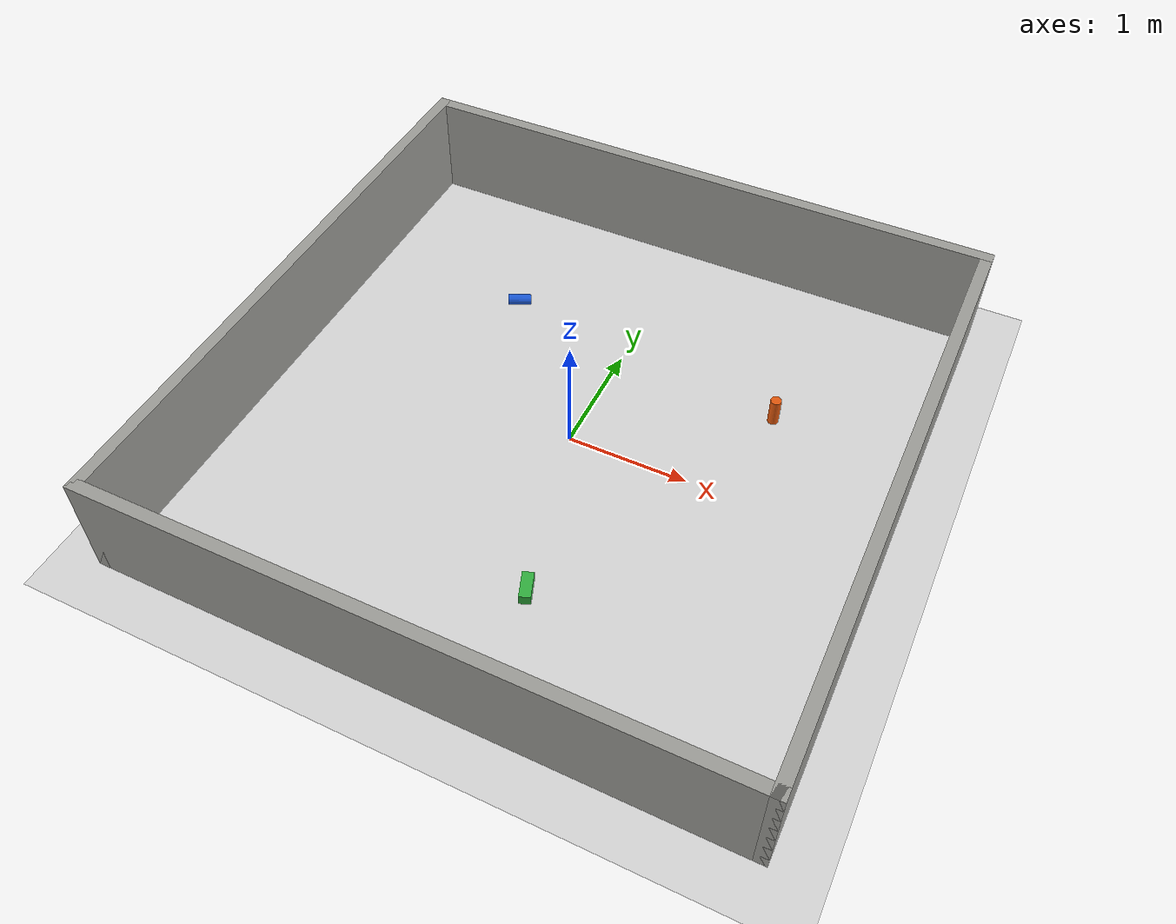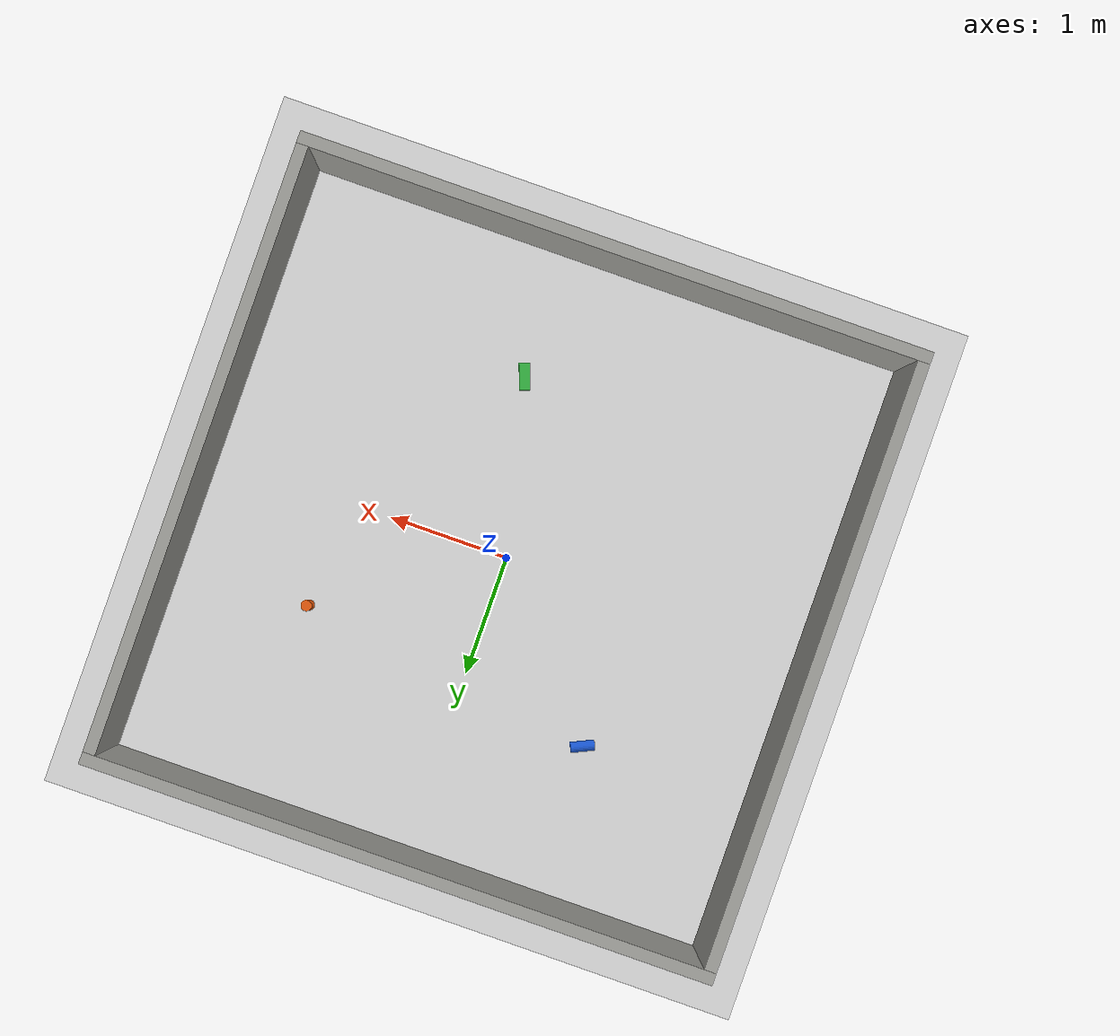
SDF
<?xml version="1.0"?>
<sdf version="1.9">
  <world name="navigate">

    <physics name="step" type="ignored">
      <max_step_size>0.001</max_step_size>
      <real_time_factor>1.0</real_time_factor>
    </physics>
    <plugin filename="gz-sim-physics-system" name="gz::sim::systems::Physics"/>
    <plugin filename="gz-sim-user-commands-system" name="gz::sim::systems::UserCommands"/>
    <plugin filename="gz-sim-scene-broadcaster-system" name="gz::sim::systems::SceneBroadcaster"/>
    <plugin filename="gz-sim-imu-system"
            name="gz::sim::systems::Imu"/>
    <plugin filename="gz-sim-forcetorque-system"
            name="gz::sim::systems::ForceTorque"/>
    <plugin filename="gz-sim-contact-system"
            name="gz::sim::systems::Contact"/>
    <plugin filename="gz-sim-sensors-system" name="gz::sim::systems::Sensors">
      <render_engine>ogre2</render_engine>
    </plugin>

    <light type="directional" name="sun">
      <cast_shadows>true</cast_shadows>
      <pose>0 0 10 0 0 0</pose>
      <diffuse>0.9 0.9 0.9 1</diffuse>
      <specular>0.2 0.2 0.2 1</specular>
      <direction>-0.4 0.2 -0.9</direction>
    </light>

    <model name="ground_plane">
      <static>true</static>
      <link name="link">
        <collision name="col">
          <geometry><plane><normal>0 0 1</normal><size>12 12</size></plane></geometry>
          <surface><friction><ode><mu>1.0</mu><mu2>1.0</mu2></ode></friction></surface>
        </collision>
        <visual name="vis">
          <geometry><plane><normal>0 0 1</normal><size>12 12</size></plane></geometry>
          <material><ambient>0.85 0.85 0.85 1</ambient><diffuse>0.85 0.85 0.85 1</diffuse></material>
        </visual>
      </link>
    </model>

    <model name="room">
      <static>true</static>
      <link name="link">
        <collision name="wall_n"><pose>0 2.55 0.45 0 0 0</pose>
          <geometry><box><size>5.2 0.10 0.90</size></box></geometry></collision>
        <visual name="wall_n_v"><pose>0 2.55 0.45 0 0 0</pose>
          <geometry><box><size>5.2 0.10 0.90</size></box></geometry>
          <material><ambient>0.62 0.62 0.60 1</ambient><diffuse>0.62 0.62 0.60 1</diffuse></material></visual>
        <collision name="wall_s"><pose>0 -2.55 0.45 0 0 0</pose>
          <geometry><box><size>5.2 0.10 0.90</size></box></geometry></collision>
        <visual name="wall_s_v"><pose>0 -2.55 0.45 0 0 0</pose>
          <geometry><box><size>5.2 0.10 0.90</size></box></geometry>
          <material><ambient>0.62 0.62 0.60 1</ambient><diffuse>0.62 0.62 0.60 1</diffuse></material></visual>
        <collision name="wall_e"><pose>2.55 0 0.45 0 0 0</pose>
          <geometry><box><size>0.10 5.2 0.90</size></box></geometry></collision>
        <visual name="wall_e_v"><pose>2.55 0 0.45 0 0 0</pose>
          <geometry><box><size>0.10 5.2 0.90</size></box></geometry>
          <material><ambient>0.62 0.62 0.60 1</ambient><diffuse>0.62 0.62 0.60 1</diffuse></material></visual>
        <collision name="wall_w"><pose>-2.55 0 0.45 0 0 0</pose>
          <geometry><box><size>0.10 5.2 0.90</size></box></geometry></collision>
        <visual name="wall_w_v"><pose>-2.55 0 0.45 0 0 0</pose>
          <geometry><box><size>0.10 5.2 0.90</size></box></geometry>
          <material><ambient>0.62 0.62 0.60 1</ambient><diffuse>0.62 0.62 0.60 1</diffuse></material></visual>
      </link>
    </model>

    <include>
      <uri>model://bottle</uri>
      <name>bottle</name>
      <pose>1.400 0.900 0.120 0 0 0</pose>
    </include>
    <include>
      <uri>model://can</uri>
      <name>can</name>
      <pose>-1.100 1.250 0.045 1.5708 0 2.0071</pose>
    </include>
    <include>
      <uri>model://box</uri>
      <name>box</name>
      <pose>0.350 -1.450 0.045 1.5708 0 3.4907</pose>
    </include>

  </world>
</sdf>

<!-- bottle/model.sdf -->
<sdf version="1.9">
  <model name="bottle">
    <link name="link">
      <inertial><mass>0.45</mass>
        <inertia><ixx>2.387812e-03</ixx><iyy>2.387812e-03</iyy><izz>4.556250e-04</izz>
          <ixy>0</ixy><ixz>0</ixz><iyz>0</iyz></inertia>
      </inertial>
      <collision name="col">
        <geometry><cylinder><radius>0.045</radius><length>0.24</length></cylinder></geometry>
        <surface>
          <friction><ode><mu>1.5</mu><mu2>1.5</mu2></ode></friction>
          <contact><ode><soft_cfm>0.001</soft_cfm><soft_erp>0.2</soft_erp>
            <kp>1e6</kp><kd>100</kd></ode></contact>
        </surface>
      </collision>
      <visual name="vis">
        <geometry><cylinder><radius>0.045</radius><length>0.24</length></cylinder></geometry>
        <material><ambient>0.90 0.35 0.05 1</ambient><diffuse>0.90 0.35 0.05 1</diffuse>
          <specular>0.3 0.3 0.3 1</specular></material>
      </visual>
    </link>
    <plugin filename="gz-sim-pose-publisher-system"
            name="gz::sim::systems::PosePublisher">
      <publish_link_pose>false</publish_link_pose>
      <publish_visual_pose>false</publish_visual_pose>
      <publish_collision_pose>false</publish_collision_pose>
      <publish_sensor_pose>false</publish_sensor_pose>
      <publish_nested_model_pose>false</publish_nested_model_pose>
      <publish_model_pose>true</publish_model_pose>
      <use_pose_vector_msg>false</use_pose_vector_msg>
      <!-- MUST stay false: "publish only on change" is the same trap as
           dynamic_pose/info, where a resting object never appears. -->
      <static_publisher>false</static_publisher>
      <update_frequency>20</update_frequency>
    </plugin>
  </model>
</sdf>

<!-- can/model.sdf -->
<sdf version="1.9">
  <model name="can">
    <link name="link">
      <velocity_decay>
      <linear>0.0</linear>
      <angular>2.0</angular>
      </velocity_decay>
      <inertial><mass>0.35</mass>
        <inertia><ixx>1.343854e-03</ixx><iyy>1.343854e-03</iyy><izz>3.543750e-04</izz>
          <ixy>0</ixy><ixz>0</ixz><iyz>0</iyz></inertia>
      </inertial>
      <collision name="col">
        <geometry><cylinder><radius>0.045</radius><length>0.2</length></cylinder></geometry>
        <surface>
          <friction><ode><mu>1.5</mu><mu2>1.5</mu2></ode></friction>
          <contact><ode><soft_cfm>0.001</soft_cfm><soft_erp>0.2</soft_erp>
            <kp>1e6</kp><kd>100</kd></ode></contact>
        </surface>
      </collision>
      <visual name="vis">
        <geometry><cylinder><radius>0.045</radius><length>0.2</length></cylinder></geometry>
        <material><ambient>0.10 0.35 0.85 1</ambient><diffuse>0.10 0.35 0.85 1</diffuse>
          <specular>0.3 0.3 0.3 1</specular></material>
      </visual>
    </link>
    <plugin filename="gz-sim-pose-publisher-system"
            name="gz::sim::systems::PosePublisher">
      <publish_link_pose>false</publish_link_pose>
      <publish_visual_pose>false</publish_visual_pose>
      <publish_collision_pose>false</publish_collision_pose>
      <publish_sensor_pose>false</publish_sensor_pose>
      <publish_nested_model_pose>false</publish_nested_model_pose>
      <!-- the model pose, in the world frame - exactly what verification needs -->
      <publish_model_pose>true</publish_model_pose>
      <!-- one plain Pose, not a Pose_V, so the bridge conversion is the simplest one -->
      <use_pose_vector_msg>false</use_pose_vector_msg>
      <static_publisher>false</static_publisher>
      <update_frequency>20</update_frequency>
    </plugin>
  </model>
</sdf>

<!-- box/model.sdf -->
<sdf version="1.9">
  <model name="box">
    <link name="link">
      <inertial><mass>0.5</mass>
        <inertia><ixx>2.354167e-03</ixx><iyy>2.354167e-03</iyy><izz>6.750000e-04</izz>
          <ixy>0</ixy><ixz>0</ixz><iyz>0</iyz></inertia>
      </inertial>
      <collision name="col">
        <geometry><box><size>0.09 0.09 0.22</size></box></geometry>
        <surface>
          <friction><ode><mu>1.5</mu><mu2>1.5</mu2></ode></friction>
          <contact><ode><soft_cfm>0.001</soft_cfm><soft_erp>0.2</soft_erp>
            <kp>1e6</kp><kd>100</kd></ode></contact>
        </surface>
      </collision>
      <visual name="vis">
        <geometry><box><size>0.09 0.09 0.22</size></box></geometry>
        <material><ambient>0.20 0.70 0.25 1</ambient><diffuse>0.20 0.70 0.25 1</diffuse>
          <specular>0.3 0.3 0.3 1</specular></material>
      </visual>
    </link>
    <plugin filename="gz-sim-pose-publisher-system"
            name="gz::sim::systems::PosePublisher">
      <publish_link_pose>false</publish_link_pose>
      <publish_visual_pose>false</publish_visual_pose>
      <publish_collision_pose>false</publish_collision_pose>
      <publish_sensor_pose>false</publish_sensor_pose>
      <publish_nested_model_pose>false</publish_nested_model_pose>
      <publish_model_pose>true</publish_model_pose>
      <use_pose_vector_msg>false</use_pose_vector_msg>
      <!-- MUST stay false: "publish only on change" is the same trap as
           dynamic_pose/info, where a resting object never appears. -->
      <static_publisher>false</static_publisher>
      <update_frequency>20</update_frequency>
    </plugin>
  </model>
</sdf>
